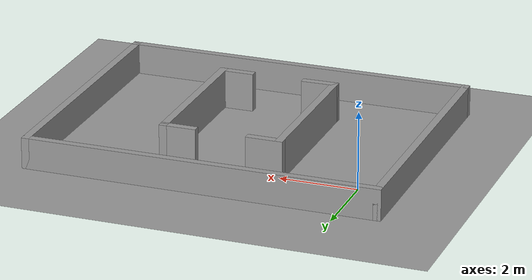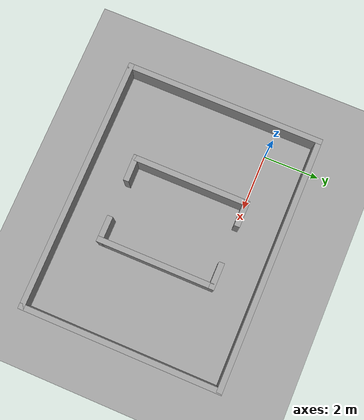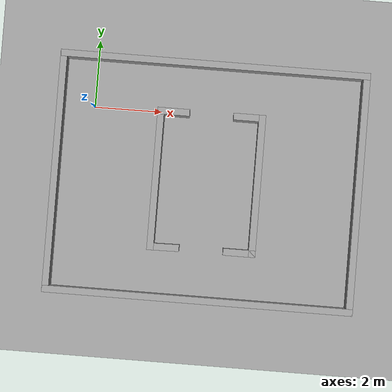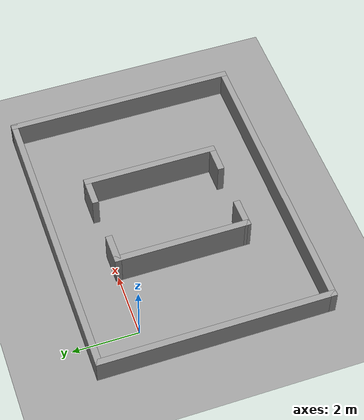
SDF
<sdf version="1.4">
 <world name="default">
  <light name="sun" type="directional">
   <pose>0 0 10 0 -0 0</pose>
   <diffuse>0.8 0.8 0.8 1</diffuse>
   <specular>0.2 0.2 0.2 1</specular>
   <attenuation>
    <range>1000</range>
    <constant>0.9</constant>
    <linear>0.01</linear>
    <quadratic>0.001</quadratic>
   </attenuation>
   <direction>0.5 0.1 -0.9</direction>
  </light>
  <scene><ambient>0.4 0.4 0.4 1</ambient><background>0.7 0.7 0.7 1</background><shadows>1</shadows></scene>
  <physics type="ode">
   <max_step_size>0.01</max_step_size>
   <real_time_factor>1</real_time_factor>
   <real_time_update_rate>100</real_time_update_rate>
   <gravity>0 0 -9.8</gravity>
  </physics>
  <model name="world7">
   <link name="Wall_0">
    <collision name="Wall_0_Collision">
     <geometry><box><size>9.2 0.2 0.8</size></box></geometry>
     <pose>0 0 0.4 0 -0 0</pose>
    </collision>
    <visual name="Wall_0_Visual">
     <pose>0 0 0.4 0 -0 0</pose>
     <geometry><box><size>9.2 0.2 0.8</size></box></geometry>
     <material>
      <script><uri>file://media/materials/scripts/gazebo.material</uri><name>Gazebo/Grey</name></script>
     </material>
    </visual>
    <velocity_decay><linear>0</linear><angular>0</angular></velocity_decay>
    <pose>3.5 1.5 0 0 -0 0</pose>
   </link>
   <link name="Wall_1">
    <collision name="Wall_1_Collision">
     <geometry><box><size>7.2 0.2 0.8</size></box></geometry>
     <pose>0 0 0.4 0 -0 0</pose>
    </collision>
    <visual name="Wall_1_Visual">
     <pose>0 0 0.4 0 -0 0</pose>
     <geometry><box><size>7.2 0.2 0.8</size></box></geometry>
     <material>
      <script><uri>file://media/materials/scripts/gazebo.material</uri><name>Gazebo/Grey</name></script>
     </material>
    </visual>
    <velocity_decay><linear>0</linear><angular>0</angular></velocity_decay>
    <pose>8 -2 0 0 0 -1.5708</pose>
   </link>
   <link name="Wall_10">
    <collision name="Wall_10_Collision">
     <geometry><box><size>0.95 0.2 1</size></box></geometry>
     <pose>0 0 0.5 0 -0 0</pose>
    </collision>
    <visual name="Wall_10_Visual">
     <pose>0 0 0.5 0 -0 0</pose>
     <geometry><box><size>0.95 0.2 1</size></box></geometry>
     <material>
      <script><uri>file://media/materials/scripts/gazebo.material</uri><name>Gazebo/Grey</name></script>
     </material>
    </visual>
    <velocity_decay><linear>0</linear><angular>0</angular></velocity_decay>
    <pose>2.375 0 0 0 -0 3.14159</pose>
   </link>
   <link name="Wall_11">
    <collision name="Wall_11_Collision">
     <geometry><box><size>4.2115 0.2 1</size></box></geometry>
     <pose>0 0 0.5 0 -0 0</pose>
    </collision>
    <visual name="Wall_11_Visual">
     <pose>0 0 0.5 0 -0 0</pose>
     <geometry><box><size>4.2115 0.2 1</size></box></geometry>
     <material>
      <script><uri>file://media/materials/scripts/gazebo.material</uri><name>Gazebo/Grey</name></script>
     </material>
    </visual>
    <velocity_decay><linear>0</linear><angular>0</angular></velocity_decay>
    <pose>2 -2.006 0 0 0 -1.5708</pose>
   </link>
   <link name="Wall_12">
    <collision name="Wall_12_Collision">
     <geometry><box><size>0.95 0.2 1</size></box></geometry>
     <pose>0 0 0.5 0 -0 0</pose>
    </collision>
    <visual name="Wall_12_Visual">
     <pose>0 0 0.5 0 -0 0</pose>
     <geometry><box><size>0.95 0.2 1</size></box></geometry>
     <material>
      <script><uri>file://media/materials/scripts/gazebo.material</uri><name>Gazebo/Grey</name></script>
     </material>
    </visual>
    <velocity_decay><linear>0</linear><angular>0</angular></velocity_decay>
    <pose>2.375 -4.006 0 0 -0 0.015999</pose>
   </link>
   <link name="Wall_14">
    <collision name="Wall_14_Collision">
     <geometry><box><size>0.95 0.2 1</size></box></geometry>
     <pose>0 0 0.5 0 -0 0</pose>
    </collision>
    <visual name="Wall_14_Visual">
     <pose>0 0 0.5 0 -0 0</pose>
     <geometry><box><size>0.95 0.2 1</size></box></geometry>
     <material>
      <script><uri>file://media/materials/scripts/gazebo.material</uri><name>Gazebo/Grey</name></script>
     </material>
    </visual>
    <velocity_decay><linear>0</linear><angular>0</angular></velocity_decay>
    <pose>4.625 0 0 0 -0 0</pose>
   </link>
   <link name="Wall_15">
    <collision name="Wall_15_Collision">
     <geometry><box><size>4.2 0.2 1</size></box></geometry>
     <pose>0 0 0.5 0 -0 0</pose>
    </collision>
    <visual name="Wall_15_Visual">
     <pose>0 0 0.5 0 -0 0</pose>
     <geometry><box><size>4.2 0.2 1</size></box></geometry>
     <material>
      <script><uri>file://media/materials/scripts/gazebo.material</uri><name>Gazebo/Grey</name></script>
     </material>
    </visual>
    <velocity_decay><linear>0</linear><angular>0</angular></velocity_decay>
    <pose>5 -2 0 0 0 -1.5708</pose>
   </link>
   <link name="Wall_16">
    <collision name="Wall_16_Collision">
     <geometry><box><size>0.95 0.2 1</size></box></geometry>
     <pose>0 0 0.5 0 -0 0</pose>
    </collision>
    <visual name="Wall_16_Visual">
     <pose>0 0 0.5 0 -0 0</pose>
     <geometry><box><size>0.95 0.2 1</size></box></geometry>
     <material>
      <script><uri>file://media/materials/scripts/gazebo.material</uri><name>Gazebo/Grey</name></script>
     </material>
    </visual>
    <velocity_decay><linear>0</linear><angular>0</angular></velocity_decay>
    <pose>4.625 -4 0 0 -0 3.14159</pose>
   </link>
   <link name="Wall_2">
    <collision name="Wall_2_Collision">
     <geometry><box><size>9.2 0.2 0.8</size></box></geometry>
     <pose>0 0 0.4 0 -0 0</pose>
    </collision>
    <visual name="Wall_2_Visual">
     <pose>0 0 0.4 0 -0 0</pose>
     <geometry><box><size>9.2 0.2 0.8</size></box></geometry>
     <material>
      <script><uri>file://media/materials/scripts/gazebo.material</uri><name>Gazebo/Grey</name></script>
     </material>
    </visual>
    <velocity_decay><linear>0</linear><angular>0</angular></velocity_decay>
    <pose>3.5 -5.5 0 0 -0 3.14159</pose>
   </link>
   <link name="Wall_3">
    <collision name="Wall_3_Collision">
     <geometry><box><size>7.2 0.2 0.8</size></box></geometry>
     <pose>0 0 0.4 0 -0 0</pose>
    </collision>
    <visual name="Wall_3_Visual">
     <pose>0 0 0.4 0 -0 0</pose>
     <geometry><box><size>7.2 0.2 0.8</size></box></geometry>
     <material>
      <script><uri>file://media/materials/scripts/gazebo.material</uri><name>Gazebo/Grey</name></script>
     </material>
    </visual>
    <velocity_decay><linear>0</linear><angular>0</angular></velocity_decay>
    <pose>-1 -2 0 0 -0 1.5708</pose>
   </link>
   <static>1</static>
  </model>
  <model name="ground_plane_0">
   <static>1</static>
   <link name="link">
    <collision name="collision">
     <geometry><plane><normal>0 0 1</normal><size>100 100</size></plane></geometry>
     <surface><friction><ode><mu>100</mu><mu2>50</mu2></ode></friction></surface>
    </collision>
    <visual name="visual">
     <cast_shadows>0</cast_shadows>
     <geometry><plane><normal>0 0 1</normal><size>100 100</size></plane></geometry>
     <material>
      <script><uri>file://media/materials/scripts/gazebo.material</uri><name>Gazebo/Grey</name></script>
     </material>
    </visual>
    <velocity_decay><linear>0</linear><angular>0</angular></velocity_decay>
   </link>
   <pose>0.497681 0 0 0 -0 0</pose>
  </model>
 </world>
</sdf>
